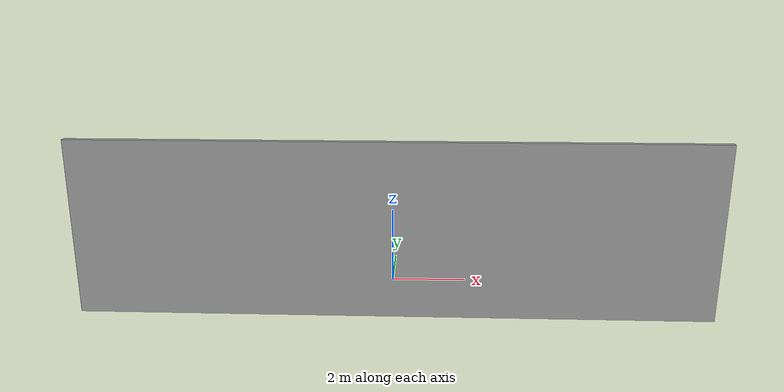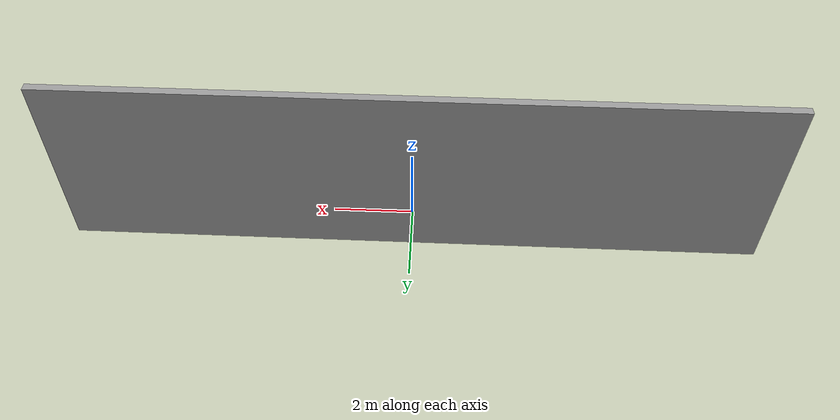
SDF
<?xml version="1.0" ?>
<sdf version="1.5">
  <model name="grey_wall_long">
    <static>true</static>
    <link name="link">
      <pose>0 0 1.4 0 0 0</pose>
      <collision name="collision">
        <geometry>
          <box>
            <size>18 0.2 12.8</size>
          </box>
        </geometry>
      </collision>
      <visual name="visual">
        <cast_shadows>false</cast_shadows>
        <geometry>
          <box>
            <size>18 0.2 5</size>
          </box>
        </geometry>
        <material>
          <script>
            <uri>model://grey_wall_long/materials/scripts</uri>
            <uri>model://grey_wall_long/materials/textures</uri>
            <name>vrc/grey_wall</name>
          </script>
        </material>
      </visual>
    </link>
  </model>
</sdf>
